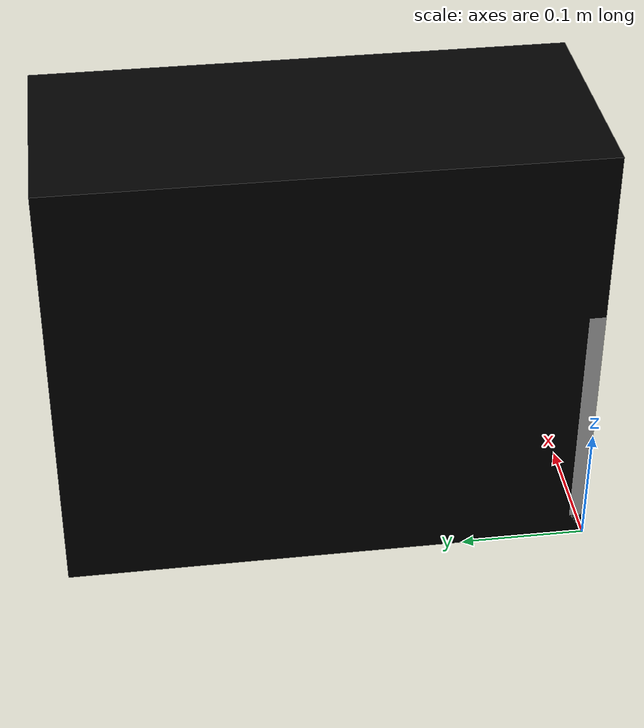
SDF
<?xml version="1.0"?>
<sdf version="1.3">
  <model name="HKU Desktop PC">
    <static>true</static>
    <link name="link">
      <collision name="collision">
        <geometry>
          <mesh>
           <uri>model://desktoppc/meshes/desktoppc.dae</uri>
          </mesh>
        </geometry>
      </collision>
      <visual name="visual">
        <geometry>
          <mesh>
           <uri>model://desktoppc/meshes/desktoppc.dae</uri>
          </mesh>
        </geometry>
      </visual>
    </link>
  </model>
</sdf>
